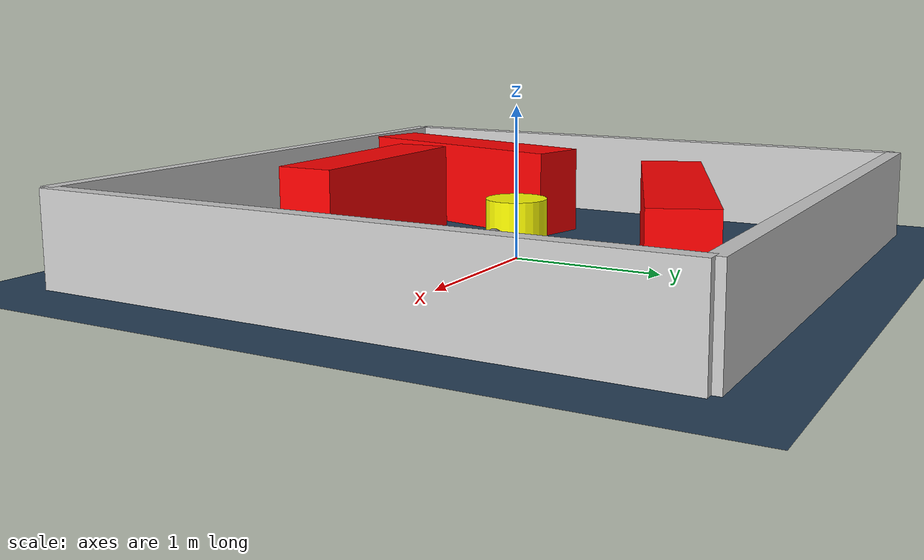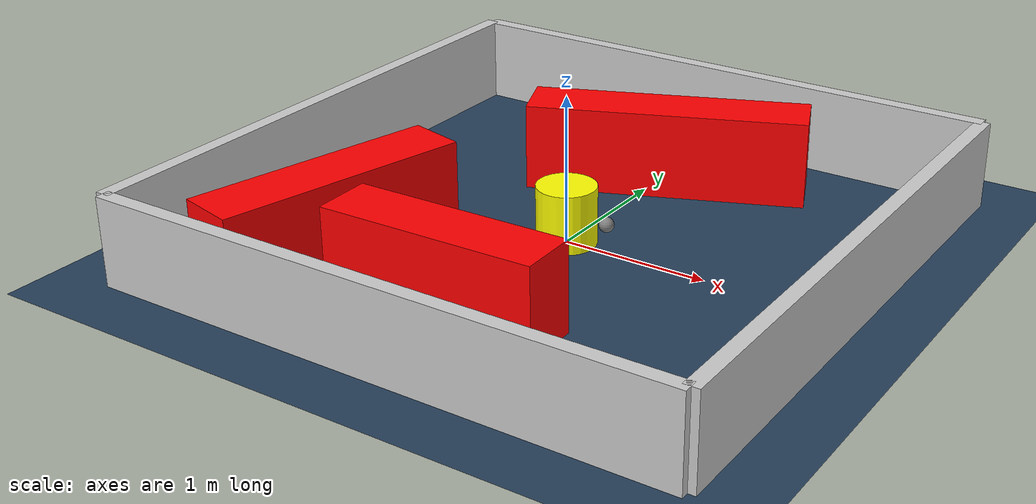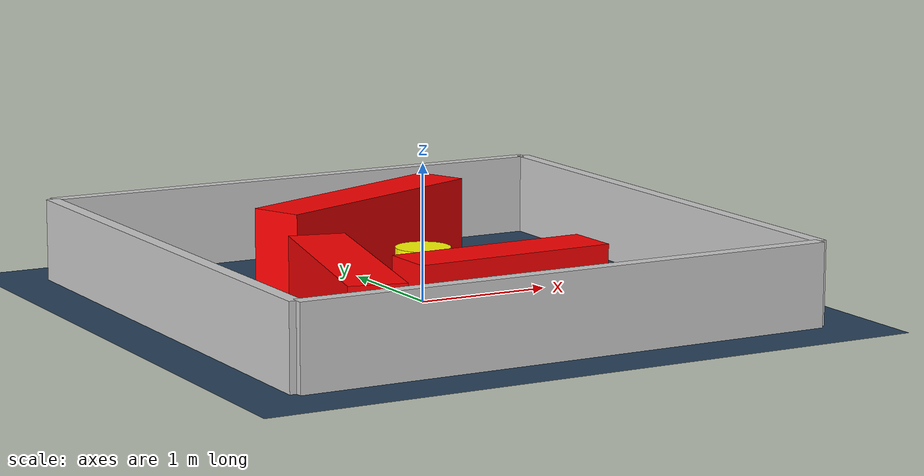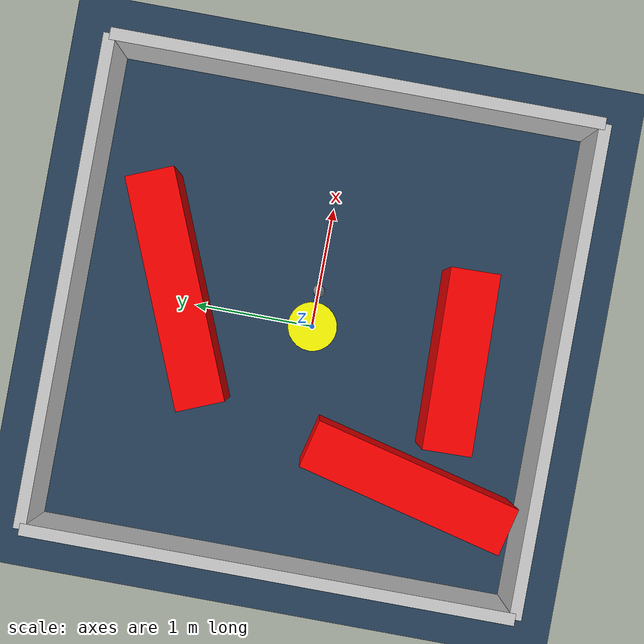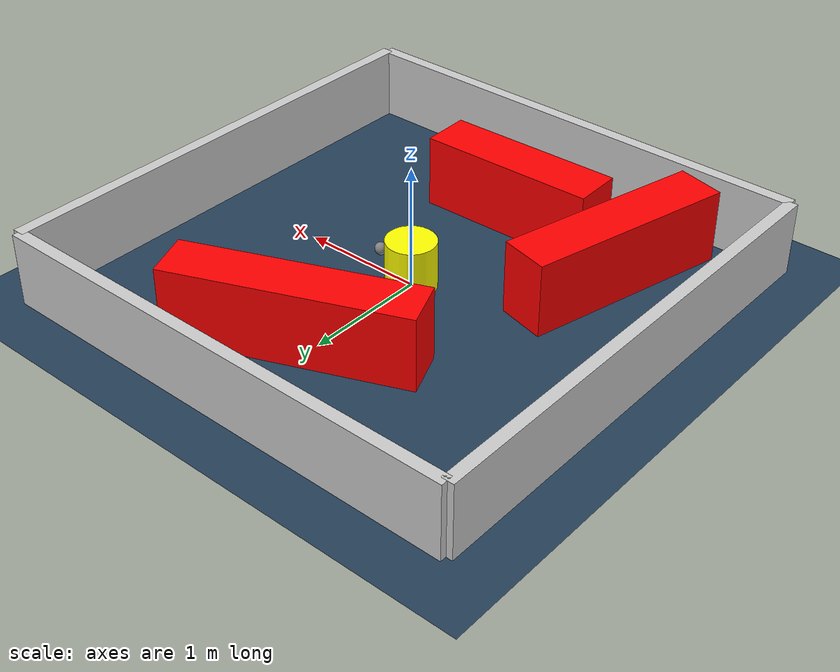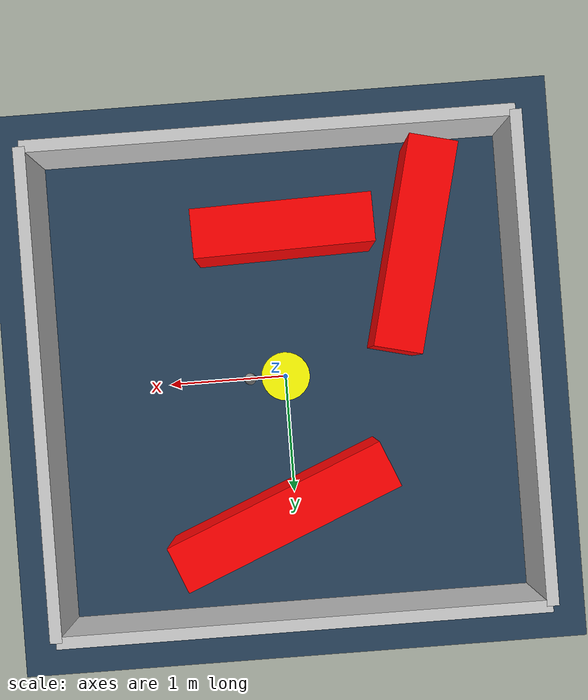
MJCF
<?xml version="1.0" ?>
<mujoco model="generated_environment">
  <option timestep="0.01" integrator="RK4" cone="elliptic"/>
  <default>
    <geom density="1"/>
  </default>
  <asset>
    <texture builtin="gradient" height="3072" rgb1="0.3 0.5 0.7" rgb2="0 0 0" type="skybox" width="512"/>
    <texture builtin="checker" height="300" mark="edge" markrgb="0.8 0.8 0.8" name="groundplane" rgb1="0.2 0.3 0.4" rgb2="0.1 0.2 0.3" type="2d" width="300"/>
    <material name="groundplane" reflectance="0.2" texrepeat="5 5" texture="groundplane" texuniform="true"/>
    <material name="robot" rgba="0.0 1.0 0.0 1"/>
  </asset>
  <worldbody>
    <light dir="0 0 -1" directional="true" pos="0 0 1.5"/>
    <geom condim="4" friction="1.0 0.005 0.001" material="groundplane" name="floor" size="0 0 0.05" type="plane"/>
    <body name="walls">
      <geom name="wall_1" condim="4" pos="-2.0 0.0 0.3" rgba="0.800000011920929 0.800000011920929 0.800000011920929 1.0" size="0.05 2.0 0.3" type="box"/>
      <geom name="wall_2" condim="4" pos="2.0 0.0 0.3" rgba="0.800000011920929 0.800000011920929 0.800000011920929 1.0" size="0.05 2.0 0.3" type="box"/>
      <geom name="wall_3" condim="4" pos="0.0 -2.0 0.3" rgba="0.800000011920929 0.800000011920929 0.800000011920929 1.0" size="2.0 0.05 0.3" type="box"/>
      <geom name="wall_4" condim="4" pos="0.0 2.0 0.3" rgba="0.800000011920929 0.800000011920929 0.800000011920929 1.0" size="2.0 0.05 0.3" type="box"/>
    </body>
    <body name="robot">
      <joint name="joint_x" type="slide" pos="0 0 0" axis="1 0 0"/>
      <joint name="joint_y" type="slide" pos="0 0 0" axis="0 1 0"/>
      <geom name="robot" type="sphere" pos="0.3 0.0 0.2" size="0.05" mass="5." friction="1.0 0.005 0.0001" condim="4" rgba="0.5 0.5 0.5 1.0"/>
      <site name="sensor_ball"/>
    </body>
    <body name="obstacle_movable_1">
      <geom name="obstacle_movable_1" condim="4" pos="0.0 0.0 0.2" euler="0 0 0.0" friction="1.0 0.005 0.001" rgba="1.0 1.0 0.0 1.0" size="0.2 0.2 0.0" type="cylinder" mass="0.1"/>
      <joint type="free"/>
    </body>
    <body name="obstacle_2_static">
      <geom name="obstacle_2_static" condim="4" pos="-0.0640651557413956 -1.213887660309973 0.3" euler="0 0 1.2871268414533388" friction="1.0 0.005 0.001" rgba="1 0 0 1" size="0.7338474990071009 0.2 0.3" type="box"/>
    </body>
    <body name="obstacle_3_static">
      <geom name="obstacle_3_static" condim="4" pos="0.09664130060372833 1.128701934519072 0.3" euler="0 0 202.50540536478732" friction="1.0 0.005 0.001" rgba="1 0 0 1" size="0.9560934075453982 0.2 0.3" type="box"/>
    </body>
    <body name="obstacle_4_static">
      <geom name="obstacle_4_static" condim="4" pos="-1.1230917327735277 -0.9846094655711111 0.3" euler="0 0 76.22505327066092" friction="1.0 0.005 0.001" rgba="1 0 0 1" size="0.8660222755721525 0.2 0.3" type="box"/>
    </body>
  </worldbody>
  <actuator>
    <motor name="actuator_x" joint="joint_x" gear="1" ctrlrange="-1 1"/>
    <motor name="actuator_y" joint="joint_y" gear="1" ctrlrange="-1 1"/>
  </actuator>
</mujoco>
